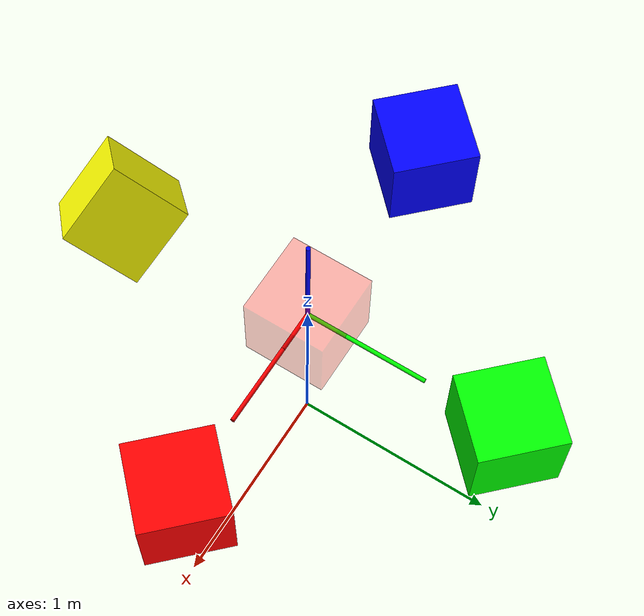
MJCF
<mujoco model="frames_and_orientation">
    <compiler angle="degree"/> <worldbody>
        <body name="reference_frame" pos="0 0 1">

            <geom name="axisangle_box" type="box" size="0.2 0.2 0.2" pos="1 0 0" axisangle="0 0 1 45" rgba="1 0 0 1"/>

            <geom name="quaternion_box" type="box" size="0.2 0.2 0.2" pos="0 1 0" quat="0.92388 0 0 0.38268" rgba="0 1 0 1"/>

            <geom name="euler_box" type="box" size="0.2 0.2 0.2" pos="-1 0 0" euler="0 0 45" rgba="0 0 1 1"/>

            <geom name="zaxis_box" type="box" size="0.2 0.2 0.2" pos="0 -1 0" zaxis="1 1 1" rgba="1 1 0 1"/>

        </body>

        <body name="ref" pos="-1 0 1">
            <!-- Vẽ 3 trục XYZ bằng 3 cylinders -->
            <body name="box1" pos="1 0 0">
                <geom type="box" size="0.2 0.2 0.2" rgba="1 0 0 0.3"/>
                <!-- X axis (đỏ) -->
                <geom type="cylinder" size="0.01 0.3" rgba="1 0 0 1"
                      pos="0.3 0 0" euler="0 90 0"/>
                <!-- Y axis (xanh lá) -->
                <geom type="cylinder" size="0.01 0.3" rgba="0 1 0 1"
                      pos="0 0.3 0" euler="90 0 0"/>
                <!-- Z axis (xanh dương) -->
                <geom type="cylinder" size="0.01 0.3" rgba="0 0 1 1"
                      pos="0 0 0.3"/>
            </body>
        </body>
    </worldbody>
</mujoco>
